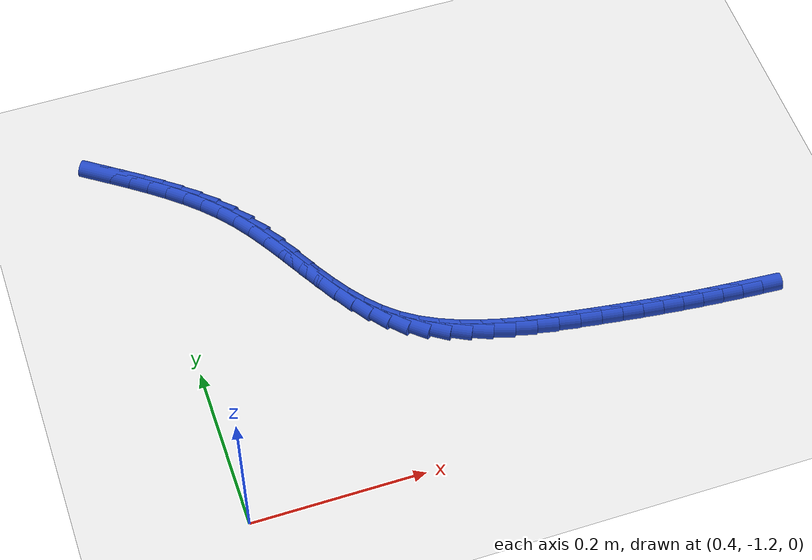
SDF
<sdf version="1.6">
 <world name="default">
  <model name="ground_plane">
   <static>1</static>
   <link name="link">
    <collision name="collision">
     <geometry><plane><normal>0 0 1</normal><size>100 100</size></plane></geometry>
     <surface><friction><ode><mu>100</mu><mu2>50</mu2></ode></friction></surface>
    </collision>
    <visual name="visual">
     <cast_shadows>0</cast_shadows>
     <geometry><plane><normal>0 0 1</normal><size>100 100</size></plane></geometry>
     <material>
      <script><uri>file://media/materials/scripts/gazebo.material</uri><name>Gazebo/WhiteGlow</name></script>
     </material>
    </visual>
   </link>
  </model>
  <model name="line">
   <link name="link_211">
    <pose>1.0246445603935381 -1.091142186618228 0.01 0 1.57 -0.07023961340516469</pose>
    <collision name="collision">
     <geometry><cylinder><radius>0.01</radius><length>0.08</length></cylinder></geometry>
    </collision>
    <visual name="visual">
     <material>
      <script><name>Gazebo/Blue</name><uri>file://media/materials/scripts/gazebo.material</uri></script>
     </material>
     <geometry><cylinder><radius>0.01</radius><length>0.08</length></cylinder></geometry>
    </visual>
   </link>
   <link name="link_212">
    <pose>1.000435449306043 -1.0894389460550966 0.01 0 1.57 -0.08126338703425182</pose>
    <collision name="collision">
     <geometry><cylinder><radius>0.01</radius><length>0.08</length></cylinder></geometry>
    </collision>
    <visual name="visual">
     <material>
      <script><name>Gazebo/Blue</name><uri>file://media/materials/scripts/gazebo.material</uri></script>
     </material>
     <geometry><cylinder><radius>0.01</radius><length>0.08</length></cylinder></geometry>
    </visual>
   </link>
   <link name="link_213">
    <pose>0.9765983800685263 -1.0874975897865724 0.01 0 1.57 -0.09229278714856727</pose>
    <collision name="collision">
     <geometry><cylinder><radius>0.01</radius><length>0.08</length></cylinder></geometry>
    </collision>
    <visual name="visual">
     <material>
      <script><name>Gazebo/Blue</name><uri>file://media/materials/scripts/gazebo.material</uri></script>
     </material>
     <geometry><cylinder><radius>0.01</radius><length>0.08</length></cylinder></geometry>
    </visual>
   </link>
   <link name="link_214">
    <pose>0.9530389093468564 -1.0853170257331626 0.01 0 1.57 -0.10333281423216298</pose>
    <collision name="collision">
     <geometry><cylinder><radius>0.01</radius><length>0.08</length></cylinder></geometry>
    </collision>
    <visual name="visual">
     <material>
      <script><name>Gazebo/Blue</name><uri>file://media/materials/scripts/gazebo.material</uri></script>
     </material>
     <geometry><cylinder><radius>0.01</radius><length>0.08</length></cylinder></geometry>
    </visual>
   </link>
   <link name="link_215">
    <pose>0.9296566144683042 -1.0828922308635258 0.01 0 1.57 -0.11423917878881362</pose>
    <collision name="collision">
     <geometry><cylinder><radius>0.01</radius><length>0.08</length></cylinder></geometry>
    </collision>
    <visual name="visual">
     <material>
      <script><name>Gazebo/Blue</name><uri>file://media/materials/scripts/gazebo.material</uri></script>
     </material>
     <geometry><cylinder><radius>0.01</radius><length>0.08</length></cylinder></geometry>
    </visual>
   </link>
   <link name="link_216">
    <pose>0.9063510727601397 -1.0802181821463188 0.01 0 1.57 -0.12486877653910343</pose>
    <collision name="collision">
     <geometry><cylinder><radius>0.01</radius><length>0.08</length></cylinder></geometry>
    </collision>
    <visual name="visual">
     <material>
      <script><name>Gazebo/Blue</name><uri>file://media/materials/scripts/gazebo.material</uri></script>
     </material>
     <geometry><cylinder><radius>0.01</radius><length>0.08</length></cylinder></geometry>
    </visual>
   </link>
   <link name="link_217">
    <pose>0.8830218615496334 -1.077289856550199 0.01 0 1.57 -0.1350859760270467</pose>
    <collision name="collision">
     <geometry><cylinder><radius>0.01</radius><length>0.08</length></cylinder></geometry>
    </collision>
    <visual name="visual">
     <material>
      <script><name>Gazebo/Blue</name><uri>file://media/materials/scripts/gazebo.material</uri></script>
     </material>
     <geometry><cylinder><radius>0.01</radius><length>0.08</length></cylinder></geometry>
    </visual>
   </link>
   <link name="link_218">
    <pose>0.859568558164057 -1.0741022310438246 0.01 0 1.57 -0.14476838504963047</pose>
    <collision name="collision">
     <geometry><cylinder><radius>0.01</radius><length>0.08</length></cylinder></geometry>
    </collision>
    <visual name="visual">
     <material>
      <script><name>Gazebo/Blue</name><uri>file://media/materials/scripts/gazebo.material</uri></script>
     </material>
     <geometry><cylinder><radius>0.01</radius><length>0.08</length></cylinder></geometry>
    </visual>
   </link>
   <link name="link_219">
    <pose>0.8358907399306799 -1.0706502825958524 0.01 0 1.57 -0.15387834278281187</pose>
    <collision name="collision">
     <geometry><cylinder><radius>0.01</radius><length>0.08</length></cylinder></geometry>
    </collision>
    <visual name="visual">
     <material>
      <script><name>Gazebo/Blue</name><uri>file://media/materials/scripts/gazebo.material</uri></script>
     </material>
     <geometry><cylinder><radius>0.01</radius><length>0.08</length></cylinder></geometry>
    </visual>
   </link>
   <link name="link_220">
    <pose>0.8118901574329143 -1.066927684346436 0.01 0 1.57 -0.16646631526811095</pose>
    <collision name="collision">
     <geometry><cylinder><radius>0.01</radius><length>0.08</length></cylinder></geometry>
    </collision>
    <visual name="visual">
     <material>
      <script><name>Gazebo/Blue</name><uri>file://media/materials/scripts/gazebo.material</uri></script>
     </material>
     <geometry><cylinder><radius>0.01</radius><length>0.08</length></cylinder></geometry>
    </visual>
   </link>
   <link name="link_221">
    <pose>0.7876036862496633 -1.0628470422216756 0.01 0 1.57 -0.1890302769015483</pose>
    <collision name="collision">
     <geometry><cylinder><radius>0.01</radius><length>0.08</length></cylinder></geometry>
    </collision>
    <visual name="visual">
     <material>
      <script><name>Gazebo/Blue</name><uri>file://media/materials/scripts/gazebo.material</uri></script>
     </material>
     <geometry><cylinder><radius>0.01</radius><length>0.08</length></cylinder></geometry>
    </visual>
   </link>
   <link name="link_222">
    <pose>0.7632804114759819 -1.058193648661315 0.01 0 1.57 -0.22254702485529668</pose>
    <collision name="collision">
     <geometry><cylinder><radius>0.01</radius><length>0.08</length></cylinder></geometry>
    </collision>
    <visual name="visual">
     <material>
      <script><name>Gazebo/Blue</name><uri>file://media/materials/scripts/gazebo.material</uri></script>
     </material>
     <geometry><cylinder><radius>0.01</radius><length>0.08</length></cylinder></geometry>
    </visual>
   </link>
   <link name="link_223">
    <pose>0.7391879999155259 -1.0527416481502514 0.01 0 1.57 -0.26789903891269745</pose>
    <collision name="collision">
     <geometry><cylinder><radius>0.01</radius><length>0.08</length></cylinder></geometry>
    </collision>
    <visual name="visual">
     <material>
      <script><name>Gazebo/Blue</name><uri>file://media/materials/scripts/gazebo.material</uri></script>
     </material>
     <geometry><cylinder><radius>0.01</radius><length>0.08</length></cylinder></geometry>
    </visual>
   </link>
   <link name="link_224">
    <pose>0.7155941183719499 -1.046265185173381 0.01 0 1.57 -0.32637798381624855</pose>
    <collision name="collision">
     <geometry><cylinder><radius>0.01</radius><length>0.08</length></cylinder></geometry>
    </collision>
    <visual name="visual">
     <material>
      <script><name>Gazebo/Blue</name><uri>file://media/materials/scripts/gazebo.material</uri></script>
     </material>
     <geometry><cylinder><radius>0.01</radius><length>0.08</length></cylinder></geometry>
    </visual>
   </link>
   <link name="link_225">
    <pose>0.6927664336489091 -1.0385384042156003 0.01 0 1.57 -0.3995590648694339</pose>
    <collision name="collision">
     <geometry><cylinder><radius>0.01</radius><length>0.08</length></cylinder></geometry>
    </collision>
    <visual name="visual">
     <material>
      <script><name>Gazebo/Blue</name><uri>file://media/materials/scripts/gazebo.material</uri></script>
     </material>
     <geometry><cylinder><radius>0.01</radius><length>0.08</length></cylinder></geometry>
    </visual>
   </link>
   <link name="link_226">
    <pose>0.670972612550058 -1.029335449761806 0.01 0 1.57 -0.48903601107360095</pose>
    <collision name="collision">
     <geometry><cylinder><radius>0.01</radius><length>0.08</length></cylinder></geometry>
    </collision>
    <visual name="visual">
     <material>
      <script><name>Gazebo/Blue</name><uri>file://media/materials/scripts/gazebo.material</uri></script>
     </material>
     <geometry><cylinder><radius>0.01</radius><length>0.08</length></cylinder></geometry>
    </visual>
   </link>
   <link name="link_227">
    <pose>0.6504803218790535 -1.018430466296895 0.01 0 1.57 -0.5959167582657163</pose>
    <collision name="collision">
     <geometry><cylinder><radius>0.01</radius><length>0.08</length></cylinder></geometry>
    </collision>
    <visual name="visual">
     <material>
      <script><name>Gazebo/Blue</name><uri>file://media/materials/scripts/gazebo.material</uri></script>
     </material>
     <geometry><cylinder><radius>0.01</radius><length>0.08</length></cylinder></geometry>
    </visual>
   </link>
   <link name="link_228">
    <pose>0.6315572284395494 -1.0055975983057641 0.01 0 1.57 -0.7180645191865891</pose>
    <collision name="collision">
     <geometry><cylinder><radius>0.01</radius><length>0.08</length></cylinder></geometry>
    </collision>
    <visual name="visual">
     <material>
      <script><name>Gazebo/Blue</name><uri>file://media/materials/scripts/gazebo.material</uri></script>
     </material>
     <geometry><cylinder><radius>0.01</radius><length>0.08</length></cylinder></geometry>
    </visual>
   </link>
   <link name="link_229">
    <pose>0.6144391782172144 -0.9906424248043961 0.01 0 1.57 -0.8318565079100648</pose>
    <collision name="collision">
     <geometry><cylinder><radius>0.01</radius><length>0.08</length></cylinder></geometry>
    </collision>
    <visual name="visual">
     <material>
      <script><name>Gazebo/Blue</name><uri>file://media/materials/scripts/gazebo.material</uri></script>
     </material>
     <geometry><cylinder><radius>0.01</radius><length>0.08</length></cylinder></geometry>
    </visual>
   </link>
   <link name="link_230">
    <pose>0.5990146201492887 -0.9737137046516969 0.01 0 1.57 -0.9221439384342689</pose>
    <collision name="collision">
     <geometry><cylinder><radius>0.01</radius><length>0.08</length></cylinder></geometry>
    </collision>
    <visual name="visual">
     <material>
      <script><name>Gazebo/Blue</name><uri>file://media/materials/scripts/gazebo.material</uri></script>
     </material>
     <geometry><cylinder><radius>0.01</radius><length>0.08</length></cylinder></geometry>
    </visual>
   </link>
   <link name="link_231">
    <pose>0.5849581257641788 -0.9551714777635099 0.01 0 1.57 -0.989048399385816</pose>
    <collision name="collision">
     <geometry><cylinder><radius>0.01</radius><length>0.08</length></cylinder></geometry>
    </collision>
    <visual name="visual">
     <material>
      <script><name>Gazebo/Blue</name><uri>file://media/materials/scripts/gazebo.material</uri></script>
     </material>
     <geometry><cylinder><radius>0.01</radius><length>0.08</length></cylinder></geometry>
    </visual>
   </link>
   <link name="link_232">
    <pose>0.5719411354078464 -0.9353788772273207 0.01 0 1.57 -1.0340063931428645</pose>
    <collision name="collision">
     <geometry><cylinder><radius>0.01</radius><length>0.08</length></cylinder></geometry>
    </collision>
    <visual name="visual">
     <material>
      <script><name>Gazebo/Blue</name><uri>file://media/materials/scripts/gazebo.material</uri></script>
     </material>
     <geometry><cylinder><radius>0.01</radius><length>0.08</length></cylinder></geometry>
    </visual>
   </link>
   <link name="link_233">
    <pose>0.5596350894262531 -0.9146990361306157 0.01 0 1.57 -1.05853440790296</pose>
    <collision name="collision">
     <geometry><cylinder><radius>0.01</radius><length>0.08</length></cylinder></geometry>
    </collision>
    <visual name="visual">
     <material>
      <script><name>Gazebo/Blue</name><uri>file://media/materials/scripts/gazebo.material</uri></script>
     </material>
     <geometry><cylinder><radius>0.01</radius><length>0.08</length></cylinder></geometry>
    </visual>
   </link>
   <link name="link_234">
    <pose>0.5477114281653604 -0.8934950875608804 0.01 0 1.57 -1.0636822800686858</pose>
    <collision name="collision">
     <geometry><cylinder><radius>0.01</radius><length>0.08</length></cylinder></geometry>
    </collision>
    <visual name="visual">
     <material>
      <script><name>Gazebo/Blue</name><uri>file://media/materials/scripts/gazebo.material</uri></script>
     </material>
     <geometry><cylinder><radius>0.01</radius><length>0.08</length></cylinder></geometry>
    </visual>
   </link>
   <link name="link_235">
    <pose>0.5358415919711309 -0.8721301646056028 0.01 0 1.57 -1.0498154098032446</pose>
    <collision name="collision">
     <geometry><cylinder><radius>0.01</radius><length>0.08</length></cylinder></geometry>
    </collision>
    <visual name="visual">
     <material>
      <script><name>Gazebo/Blue</name><uri>file://media/materials/scripts/gazebo.material</uri></script>
     </material>
     <geometry><cylinder><radius>0.01</radius><length>0.08</length></cylinder></geometry>
    </visual>
   </link>
   <link name="link_236">
    <pose>0.5236970211895263 -0.850967400352268 0.01 0 1.57 -1.0165924236758217</pose>
    <collision name="collision">
     <geometry><cylinder><radius>0.01</radius><length>0.08</length></cylinder></geometry>
    </collision>
    <visual name="visual">
     <material>
      <script><name>Gazebo/Blue</name><uri>file://media/materials/scripts/gazebo.material</uri></script>
     </material>
     <geometry><cylinder><radius>0.01</radius><length>0.08</length></cylinder></geometry>
    </visual>
   </link>
   <link name="link_237">
    <pose>0.5109491561665082 -0.8303699278883628 0.01 0 1.57 -0.963100438426188</pose>
    <collision name="collision">
     <geometry><cylinder><radius>0.01</radius><length>0.08</length></cylinder></geometry>
    </collision>
    <visual name="visual">
     <material>
      <script><name>Gazebo/Blue</name><uri>file://media/materials/scripts/gazebo.material</uri></script>
     </material>
     <geometry><cylinder><radius>0.01</radius><length>0.08</length></cylinder></geometry>
    </visual>
   </link>
   <link name="link_238">
    <pose>0.49726943724803835 -0.8107008803013728 0.01 0 1.57 -0.8909066906686538</pose>
    <collision name="collision">
     <geometry><cylinder><radius>0.01</radius><length>0.08</length></cylinder></geometry>
    </collision>
    <visual name="visual">
     <material>
      <script><name>Gazebo/Blue</name><uri>file://media/materials/scripts/gazebo.material</uri></script>
     </material>
     <geometry><cylinder><radius>0.01</radius><length>0.08</length></cylinder></geometry>
    </visual>
   </link>
   <link name="link_239">
    <pose>0.4823726437817415 -0.7922751746219168 0.01 0 1.57 -0.8193475670499648</pose>
    <collision name="collision">
     <geometry><cylinder><radius>0.01</radius><length>0.08</length></cylinder></geometry>
    </collision>
    <visual name="visual">
     <material>
      <script><name>Gazebo/Blue</name><uri>file://media/materials/scripts/gazebo.material</uri></script>
     </material>
     <geometry><cylinder><radius>0.01</radius><length>0.08</length></cylinder></geometry>
    </visual>
   </link>
   <link name="link_240">
    <pose>0.4662872325766361 -0.7750587514451441 0.01 0 1.57 -0.7579967732852554</pose>
    <collision name="collision">
     <geometry><cylinder><radius>0.01</radius><length>0.08</length></cylinder></geometry>
    </collision>
    <visual name="visual">
     <material>
      <script><name>Gazebo/Blue</name><uri>file://media/materials/scripts/gazebo.material</uri></script>
     </material>
     <geometry><cylinder><radius>0.01</radius><length>0.08</length></cylinder></geometry>
    </visual>
   </link>
   <link name="link_241">
    <pose>0.4491797004895022 -0.7588639772980994 0.01 0 1.57 -0.7075002047711983</pose>
    <collision name="collision">
     <geometry><cylinder><radius>0.01</radius><length>0.08</length></cylinder></geometry>
    </collision>
    <visual name="visual">
     <material>
      <script><name>Gazebo/Blue</name><uri>file://media/materials/scripts/gazebo.material</uri></script>
     </material>
     <geometry><cylinder><radius>0.01</radius><length>0.08</length></cylinder></geometry>
    </visual>
   </link>
   <link name="link_242">
    <pose>0.4312171426698909 -0.7435025530875505 0.01 0 1.57 -0.6680351485895712</pose>
    <collision name="collision">
     <geometry><cylinder><radius>0.01</radius><length>0.08</length></cylinder></geometry>
    </collision>
    <visual name="visual">
     <material>
      <script><name>Gazebo/Blue</name><uri>file://media/materials/scripts/gazebo.material</uri></script>
     </material>
     <geometry><cylinder><radius>0.01</radius><length>0.08</length></cylinder></geometry>
    </visual>
   </link>
   <link name="link_243">
    <pose>0.4125666542673524 -0.7287861797202642 0.01 0 1.57 -0.6395209818066293</pose>
    <collision name="collision">
     <geometry><cylinder><radius>0.01</radius><length>0.08</length></cylinder></geometry>
    </collision>
    <visual name="visual">
     <material>
      <script><name>Gazebo/Blue</name><uri>file://media/materials/scripts/gazebo.material</uri></script>
     </material>
     <geometry><cylinder><radius>0.01</radius><length>0.08</length></cylinder></geometry>
    </visual>
   </link>
   <link name="link_244">
    <pose>0.3933953304314393 -0.7145265581030091 0.01 0 1.57 -0.6217635929698029</pose>
    <collision name="collision">
     <geometry><cylinder><radius>0.01</radius><length>0.08</length></cylinder></geometry>
    </collision>
    <visual name="visual">
     <material>
      <script><name>Gazebo/Blue</name><uri>file://media/materials/scripts/gazebo.material</uri></script>
     </material>
     <geometry><cylinder><radius>0.01</radius><length>0.08</length></cylinder></geometry>
    </visual>
   </link>
   <link name="link_245">
    <pose>0.37387026631170195 -0.7005353891425523 0.01 0 1.57 -0.6145568842189634</pose>
    <collision name="collision">
     <geometry><cylinder><radius>0.01</radius><length>0.08</length></cylinder></geometry>
    </collision>
    <visual name="visual">
     <material>
      <script><name>Gazebo/Blue</name><uri>file://media/materials/scripts/gazebo.material</uri></script>
     </material>
     <geometry><cylinder><radius>0.01</radius><length>0.08</length></cylinder></geometry>
    </visual>
   </link>
  </model>
 </world>
</sdf>
